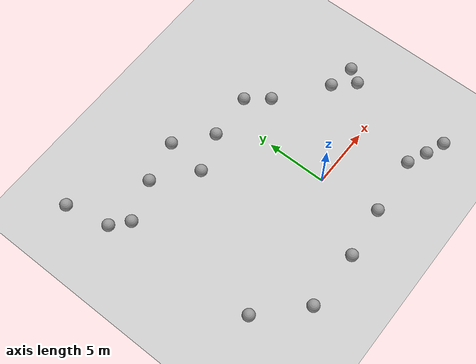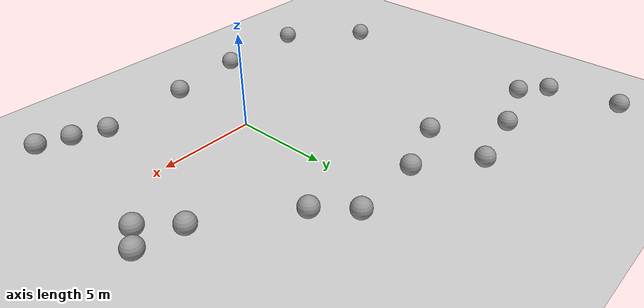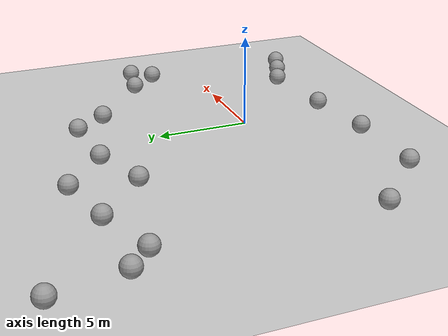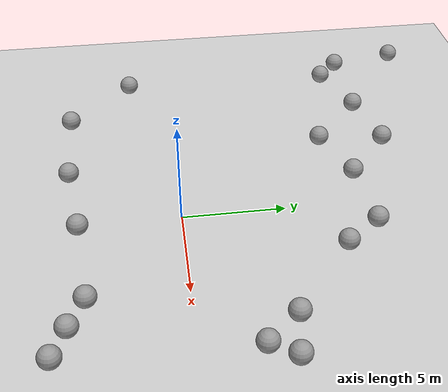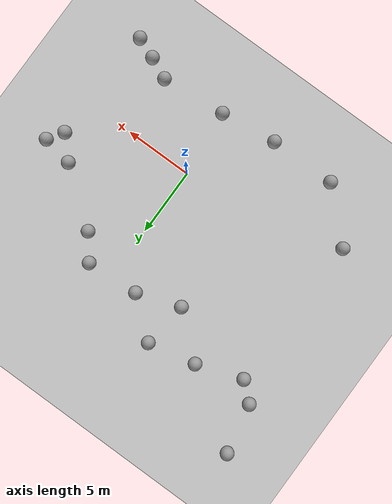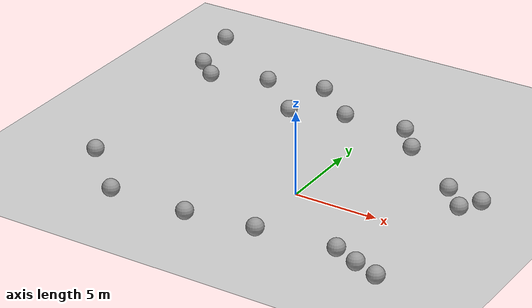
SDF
<sdf version="1.6">
 <world name="default">
  <model name="ground_plane">
   <static>1</static>
   <link name="link">
    <collision name="collision">
     <geometry><plane><normal>0 0 1</normal><size>100 100</size></plane></geometry>
     <surface><friction><ode><mu>100</mu><mu2>50</mu2></ode></friction></surface>
    </collision>
    <visual name="visual">
     <cast_shadows>0</cast_shadows>
     <geometry><plane><normal>0 0 1</normal><size>100 100</size></plane></geometry>
     <material>
      <script><uri>file://media/materials/scripts/gazebo.material</uri><name>Gazebo/Grey</name></script>
     </material>
    </visual>
   </link>
  </model>
  <model name="unit_sphere_0">
   <pose>5.15486 -4.38811 0.5 0 -0 0</pose>
   <link name="link">
    <inertial>
     <mass>1</mass>
     <inertia><ixx>0.1</ixx><ixy>0</ixy><ixz>0</ixz><iyy>0.1</iyy><iyz>0</iyz><izz>0.1</izz></inertia>
    </inertial>
    <collision name="collision"><geometry><sphere><radius>0.5</radius></sphere></geometry></collision>
    <visual name="visual">
     <geometry><sphere><radius>0.5</radius></sphere></geometry>
     <material>
      <script><name>Gazebo/Grey</name><uri>file://media/materials/scripts/gazebo.material</uri></script>
     </material>
    </visual>
   </link>
  </model>
  <model name="unit_sphere_0_clone">
   <pose>6.71384 -5.09296 0.5 0 -0 0</pose>
   <link name="link">
    <inertial>
     <mass>1</mass>
     <inertia><ixx>0.1</ixx><ixy>0</ixy><ixz>0</ixz><iyy>0.1</iyy><iyz>0</iyz><izz>0.1</izz></inertia>
    </inertial>
    <collision name="collision"><geometry><sphere><radius>0.5</radius></sphere></geometry></collision>
    <visual name="visual">
     <geometry><sphere><radius>0.5</radius></sphere></geometry>
     <material>
      <script><name>Gazebo/Grey</name><uri>file://media/materials/scripts/gazebo.material</uri></script>
     </material>
    </visual>
   </link>
  </model>
  <model name="unit_sphere_0_clone_0">
   <pose>8.23139 -5.68918 0.5 0 -0 0</pose>
   <link name="link">
    <inertial>
     <mass>1</mass>
     <inertia><ixx>0.1</ixx><ixy>0</ixy><ixz>0</ixz><iyy>0.1</iyy><iyz>0</iyz><izz>0.1</izz></inertia>
    </inertial>
    <collision name="collision"><geometry><sphere><radius>0.5</radius></sphere></geometry></collision>
    <visual name="visual">
     <geometry><sphere><radius>0.5</radius></sphere></geometry>
     <material>
      <script><name>Gazebo/Grey</name><uri>file://media/materials/scripts/gazebo.material</uri></script>
     </material>
    </visual>
   </link>
  </model>
  <model name="unit_sphere_0_clone_7">
   <pose>7.08774 4.29856 0.5 0 -0 0</pose>
   <link name="link">
    <inertial>
     <mass>1</mass>
     <inertia><ixx>0.1</ixx><ixy>0</ixy><ixz>0</ixz><iyy>0.1</iyy><iyz>0</iyz><izz>0.1</izz></inertia>
    </inertial>
    <collision name="collision"><geometry><sphere><radius>0.5</radius></sphere></geometry></collision>
    <visual name="visual">
     <geometry><sphere><radius>0.5</radius></sphere></geometry>
     <material>
      <script><name>Gazebo/Grey</name><uri>file://media/materials/scripts/gazebo.material</uri></script>
     </material>
    </visual>
   </link>
  </model>
  <model name="unit_sphere_0_clone_8">
   <pose>8.53893 2.74635 0.5 0 -0 0</pose>
   <link name="link">
    <inertial>
     <mass>1</mass>
     <inertia><ixx>0.1</ixx><ixy>0</ixy><ixz>0</ixz><iyy>0.1</iyy><iyz>0</iyz><izz>0.1</izz></inertia>
    </inertial>
    <collision name="collision"><geometry><sphere><radius>0.5</radius></sphere></geometry></collision>
    <visual name="visual">
     <geometry><sphere><radius>0.5</radius></sphere></geometry>
     <material>
      <script><name>Gazebo/Grey</name><uri>file://media/materials/scripts/gazebo.material</uri></script>
     </material>
    </visual>
   </link>
  </model>
  <model name="unit_sphere_0_clone_9">
   <pose>9.28861 3.90002 0.5 0 -0 0</pose>
   <link name="link">
    <inertial>
     <mass>1</mass>
     <inertia><ixx>0.1</ixx><ixy>0</ixy><ixz>0</ixz><iyy>0.1</iyy><iyz>0</iyz><izz>0.1</izz></inertia>
    </inertial>
    <collision name="collision"><geometry><sphere><radius>0.5</radius></sphere></geometry></collision>
    <visual name="visual">
     <geometry><sphere><radius>0.5</radius></sphere></geometry>
     <material>
      <script><name>Gazebo/Grey</name><uri>file://media/materials/scripts/gazebo.material</uri></script>
     </material>
    </visual>
   </link>
  </model>
  <model name="unit_sphere_0_clone_47">
   <pose>-8.29138 10.353 0.5 0 -0 0</pose>
   <link name="link">
    <inertial>
     <mass>1</mass>
     <inertia><ixx>0.1</ixx><ixy>0</ixy><ixz>0</ixz><iyy>0.1</iyy><iyz>0</iyz><izz>0.1</izz></inertia>
    </inertial>
    <collision name="collision"><geometry><sphere><radius>0.5</radius></sphere></geometry></collision>
    <visual name="visual">
     <geometry><sphere><radius>0.5</radius></sphere></geometry>
     <material>
      <script><name>Gazebo/Grey</name><uri>file://media/materials/scripts/gazebo.material</uri></script>
     </material>
    </visual>
   </link>
  </model>
  <model name="unit_sphere_0_clone_48">
   <pose>-2.06402 8.83003 0.5 0 -0 0</pose>
   <link name="link">
    <inertial>
     <mass>1</mass>
     <inertia><ixx>0.1</ixx><ixy>0</ixy><ixz>0</ixz><iyy>0.1</iyy><iyz>0</iyz><izz>0.1</izz></inertia>
    </inertial>
    <collision name="collision"><geometry><sphere><radius>0.5</radius></sphere></geometry></collision>
    <visual name="visual">
     <geometry><sphere><radius>0.5</radius></sphere></geometry>
     <material>
      <script><name>Gazebo/Grey</name><uri>file://media/materials/scripts/gazebo.material</uri></script>
     </material>
    </visual>
   </link>
  </model>
  <model name="unit_sphere_0_clone_49">
   <pose>3.12178 7.33825 0.5 0 -0 0</pose>
   <link name="link">
    <inertial>
     <mass>1</mass>
     <inertia><ixx>0.1</ixx><ixy>0</ixy><ixz>0</ixz><iyy>0.1</iyy><iyz>0</iyz><izz>0.1</izz></inertia>
    </inertial>
    <collision name="collision"><geometry><sphere><radius>0.5</radius></sphere></geometry></collision>
    <visual name="visual">
     <geometry><sphere><radius>0.5</radius></sphere></geometry>
     <material>
      <script><name>Gazebo/Grey</name><uri>file://media/materials/scripts/gazebo.material</uri></script>
     </material>
    </visual>
   </link>
  </model>
  <model name="unit_sphere_0_clone_67">
   <pose>-8.45682 -5.37674 0.5 0 -0 0</pose>
   <link name="link">
    <inertial>
     <mass>1</mass>
     <inertia><ixx>0.1</ixx><ixy>0</ixy><ixz>0</ixz><iyy>0.1</iyy><iyz>0</iyz><izz>0.1</izz></inertia>
    </inertial>
    <collision name="collision"><geometry><sphere><radius>0.5</radius></sphere></geometry></collision>
    <visual name="visual">
     <geometry><sphere><radius>0.5</radius></sphere></geometry>
     <material>
      <script><name>Gazebo/Grey</name><uri>file://media/materials/scripts/gazebo.material</uri></script>
     </material>
    </visual>
   </link>
  </model>
  <model name="unit_sphere_0_clone_68">
   <pose>-3.64738 -5.35577 0.5 0 -0 0</pose>
   <link name="link">
    <inertial>
     <mass>1</mass>
     <inertia><ixx>0.1</ixx><ixy>0</ixy><ixz>0</ixz><iyy>0.1</iyy><iyz>0</iyz><izz>0.1</izz></inertia>
    </inertial>
    <collision name="collision"><geometry><sphere><radius>0.5</radius></sphere></geometry></collision>
    <visual name="visual">
     <geometry><sphere><radius>0.5</radius></sphere></geometry>
     <material>
      <script><name>Gazebo/Grey</name><uri>file://media/materials/scripts/gazebo.material</uri></script>
     </material>
    </visual>
   </link>
  </model>
  <model name="unit_sphere_0_clone_69">
   <pose>0.457119 -4.82896 0.5 0 -0 0</pose>
   <link name="link">
    <inertial>
     <mass>1</mass>
     <inertia><ixx>0.1</ixx><ixy>0</ixy><ixz>0</ixz><iyy>0.1</iyy><iyz>0</iyz><izz>0.1</izz></inertia>
    </inertial>
    <collision name="collision"><geometry><sphere><radius>0.5</radius></sphere></geometry></collision>
    <visual name="visual">
     <geometry><sphere><radius>0.5</radius></sphere></geometry>
     <material>
      <script><name>Gazebo/Grey</name><uri>file://media/materials/scripts/gazebo.material</uri></script>
     </material>
    </visual>
   </link>
  </model>
  <model name="unit_sphere_0_clone_93">
   <pose>-11.8546 -2.13799 0.5 0 -0 0</pose>
   <link name="link">
    <inertial>
     <mass>1</mass>
     <inertia><ixx>0.1</ixx><ixy>0</ixy><ixz>0</ixz><iyy>0.1</iyy><iyz>0</iyz><izz>0.1</izz></inertia>
    </inertial>
    <collision name="collision"><geometry><sphere><radius>0.5</radius></sphere></geometry></collision>
    <visual name="visual">
     <geometry><sphere><radius>0.5</radius></sphere></geometry>
     <material>
      <script><name>Gazebo/Grey</name><uri>file://media/materials/scripts/gazebo.material</uri></script>
     </material>
    </visual>
   </link>
  </model>
  <model name="unit_sphere_0_clone_109">
   <pose>-13.6837 13.9819 0.5 0 -0 0</pose>
   <link name="link">
    <inertial>
     <mass>1</mass>
     <inertia><ixx>0.1</ixx><ixy>0</ixy><ixz>0</ixz><iyy>0.1</iyy><iyz>0</iyz><izz>0.1</izz></inertia>
    </inertial>
    <collision name="collision"><geometry><sphere><radius>0.5</radius></sphere></geometry></collision>
    <visual name="visual">
     <geometry><sphere><radius>0.5</radius></sphere></geometry>
     <material>
      <script><name>Gazebo/Grey</name><uri>file://media/materials/scripts/gazebo.material</uri></script>
     </material>
    </visual>
   </link>
  </model>
  <model name="unit_sphere_0_clone_110">
   <pose>-11.6248 9.21536 0.5 0 -0 0</pose>
   <link name="link">
    <inertial>
     <mass>1</mass>
     <inertia><ixx>0.1</ixx><ixy>0</ixy><ixz>0</ixz><iyy>0.1</iyy><iyz>0</iyz><izz>0.1</izz></inertia>
    </inertial>
    <collision name="collision"><geometry><sphere><radius>0.5</radius></sphere></geometry></collision>
    <visual name="visual">
     <geometry><sphere><radius>0.5</radius></sphere></geometry>
     <material>
      <script><name>Gazebo/Grey</name><uri>file://media/materials/scripts/gazebo.material</uri></script>
     </material>
    </visual>
   </link>
  </model>
  <model name="unit_sphere_0_clone_111">
   <pose>-12.934 10.3721 0.5 0 -0 0</pose>
   <link name="link">
    <inertial>
     <mass>1</mass>
     <inertia><ixx>0.1</ixx><ixy>0</ixy><ixz>0</ixz><iyy>0.1</iyy><iyz>0</iyz><izz>0.1</izz></inertia>
    </inertial>
    <collision name="collision"><geometry><sphere><radius>0.5</radius></sphere></geometry></collision>
    <visual name="visual">
     <geometry><sphere><radius>0.5</radius></sphere></geometry>
     <material>
      <script><name>Gazebo/Grey</name><uri>file://media/materials/scripts/gazebo.material</uri></script>
     </material>
    </visual>
   </link>
  </model>
  <model name="unit_sphere_0_clone_112">
   <pose>-4.81926 11.0803 0.5 0 -0 0</pose>
   <link name="link">
    <inertial>
     <mass>1</mass>
     <inertia><ixx>0.1</ixx><ixy>0</ixy><ixz>0</ixz><iyy>0.1</iyy><iyz>0</iyz><izz>0.1</izz></inertia>
    </inertial>
    <collision name="collision"><geometry><sphere><radius>0.5</radius></sphere></geometry></collision>
    <visual name="visual">
     <geometry><sphere><radius>0.5</radius></sphere></geometry>
     <material>
      <script><name>Gazebo/Grey</name><uri>file://media/materials/scripts/gazebo.material</uri></script>
     </material>
    </visual>
   </link>
  </model>
  <model name="unit_sphere_0_clone_113">
   <pose>-5.21448 7.74657 0.5 0 -0 0</pose>
   <link name="link">
    <inertial>
     <mass>1</mass>
     <inertia><ixx>0.1</ixx><ixy>0</ixy><ixz>0</ixz><iyy>0.1</iyy><iyz>0</iyz><izz>0.1</izz></inertia>
    </inertial>
    <collision name="collision"><geometry><sphere><radius>0.5</radius></sphere></geometry></collision>
    <visual name="visual">
     <geometry><sphere><radius>0.5</radius></sphere></geometry>
     <material>
      <script><name>Gazebo/Grey</name><uri>file://media/materials/scripts/gazebo.material</uri></script>
     </material>
    </visual>
   </link>
  </model>
  <model name="unit_sphere_0_clone_114">
   <pose>1.75236 9.06116 0.5 0 -0 0</pose>
   <link name="link">
    <inertial>
     <mass>1</mass>
     <inertia><ixx>0.1</ixx><ixy>0</ixy><ixz>0</ixz><iyy>0.1</iyy><iyz>0</iyz><izz>0.1</izz></inertia>
    </inertial>
    <collision name="collision"><geometry><sphere><radius>0.5</radius></sphere></geometry></collision>
    <visual name="visual">
     <geometry><sphere><radius>0.5</radius></sphere></geometry>
     <material>
      <script><name>Gazebo/Grey</name><uri>file://media/materials/scripts/gazebo.material</uri></script>
     </material>
    </visual>
   </link>
  </model>
 </world>
</sdf>
